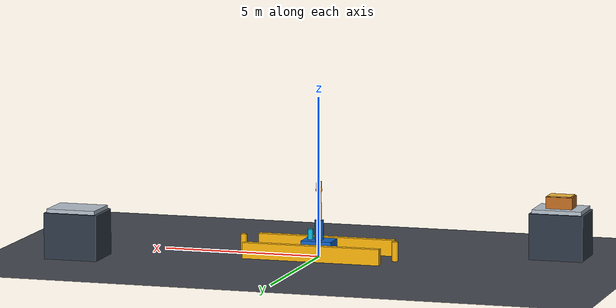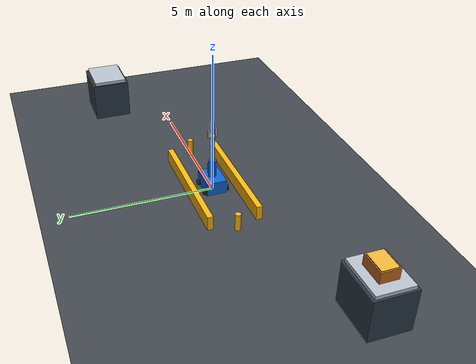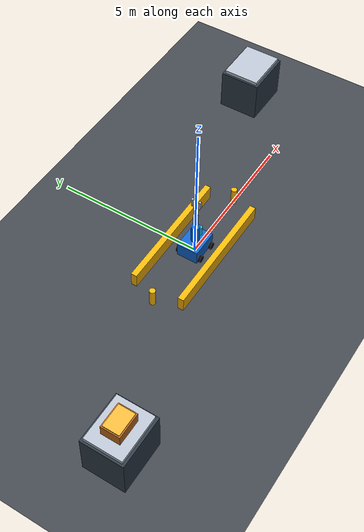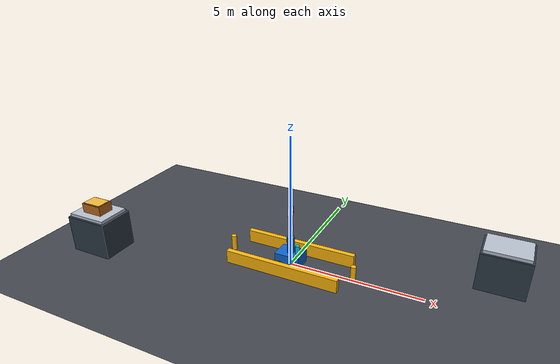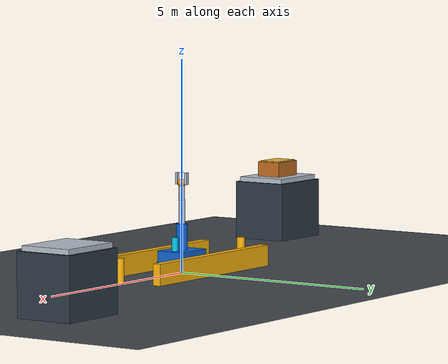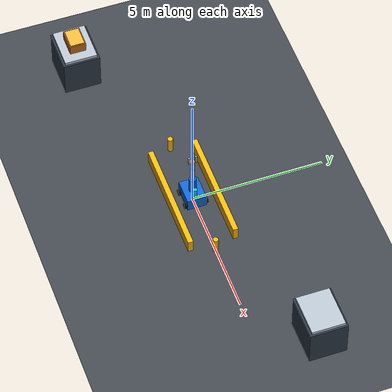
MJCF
<mujoco model="ad01_autonomous_tote_transfer_robot_v3">
  <compiler angle="degree" autolimits="true"/>
  <option timestep="0.005" gravity="0 0 -9.81" integrator="implicitfast"/>
  <statistic center="0 0 1" extent="13"/>
  <visual><global offwidth="960" offheight="540"/><headlight ambient="0.38 0.38 0.40" diffuse="0.84 0.84 0.84"/></visual>
  <default><joint damping="5" armature="0.05"/><geom friction="0.8 0.1 0.1" condim="3"/></default>
  <asset>
    <texture name="floor_tex" type="2d" builtin="checker" rgb1="0.22 0.24 0.27" rgb2="0.30 0.32 0.35" width="256" height="256"/>
    <material name="floor" texture="floor_tex" texrepeat="12 7"/>
    <material name="body" rgba="0.06 0.40 0.82 1"/>
    <material name="arm" rgba="0.72 0.76 0.81 1"/>
    <material name="accent" rgba="1.0 0.55 0.05 1"/>
    <material name="station" rgba="0.18 0.23 0.28 1"/>
    <material name="guard" rgba="1.0 0.72 0.04 1"/>
  </asset>
  <worldbody>
    <light pos="-2 -3 10" dir="0.1 0.1 -1"/>
    <geom type="plane" size="10 6 0.1" material="floor"/>
    <camera name="overview" pos="-10 -10 6.8" xyaxes="0.73 -0.68 0 0.37 0.40 0.84"/>
    <camera name="source" pos="-9 -7 4" xyaxes="0.58 -0.82 0 0.36 0.25 0.90"/>
    <camera name="destination" pos="10 -5 4.5" xyaxes="0.42 0.91 0 -0.38 0.18 0.91"/>

    <!-- Two customer workstations connected by an 18-meter measured route. -->
    <geom name="source_station" type="box" pos="-7.2 -2.1 0.72" size="0.85 0.70 0.72" material="station"/>
    <geom type="box" pos="-7.2 -2.1 1.50" size="0.78 0.62 0.06" material="arm"/>
    <geom name="destination_station" type="box" pos="7.2 2.1 0.72" size="0.85 0.70 0.72" material="station"/>
    <geom type="box" pos="7.2 2.1 1.50" size="0.78 0.62 0.06" material="arm"/>
    <geom type="box" pos="0 0.85 0.25" size="2.2 0.10 0.25" material="guard"/>
    <geom type="box" pos="0 -0.85 0.25" size="2.2 0.10 0.25" material="guard"/>
    <geom type="cylinder" pos="-2.45 0 0.30" size="0.10 0.30" material="guard"/>
    <geom type="cylinder" pos="2.45 0 0.30" size="0.10 0.30" material="guard"/>

    <body name="tote" mocap="true" pos="-7.2 -2.1 1.73">
      <geom type="box" size="0.42 0.31 0.20" rgba="0.76 0.43 0.13 1" contype="0" conaffinity="0"/>
      <geom type="box" pos="0 0 0.205" size="0.38 0.27 0.02" rgba="0.95 0.72 0.23 1" contype="0" conaffinity="0"/>
    </body>

    <body name="base" pos="0 0 0.30">
      <joint name="base_x" type="slide" axis="1 0 0" range="-7.5 7.5" damping="180"/>
      <joint name="base_y" type="slide" axis="0 1 0" range="-2.8 2.8" damping="180"/>
      <joint name="base_yaw" type="hinge" axis="0 0 1" range="-180 180" damping="160"/>
      <geom type="box" size="0.48 0.36 0.24" material="body" mass="34"/>
      <geom type="cylinder" pos="-0.32 -0.39 -0.14" quat="0.707 0.707 0 0" size="0.12 0.06" rgba="0.04 0.04 0.05 1"/>
      <geom type="cylinder" pos="0.32 -0.39 -0.14" quat="0.707 0.707 0 0" size="0.12 0.06" rgba="0.04 0.04 0.05 1"/>
      <geom type="cylinder" pos="-0.32 0.39 -0.14" quat="0.707 0.707 0 0" size="0.12 0.06" rgba="0.04 0.04 0.05 1"/>
      <geom type="cylinder" pos="0.32 0.39 -0.14" quat="0.707 0.707 0 0" size="0.12 0.06" rgba="0.04 0.04 0.05 1"/>
      <geom type="cylinder" pos="0.28 0 0.38" size="0.08 0.18" rgba="0.04 0.76 0.90 1"/>
      <body name="mast" pos="0 0 0.24">
        <geom type="cylinder" pos="0 0 0.31" size="0.14 0.31" material="body" mass="7"/>
        <body name="upper_arm" pos="0 0 0.62">
          <joint name="shoulder" type="hinge" axis="0 1 0" range="-85 105"/>
          <geom type="capsule" fromto="0 0 0 0 0 0.52" size="0.08" material="arm" mass="3"/>
          <body name="forearm" pos="0 0 0.52">
            <joint name="elbow" type="hinge" axis="0 1 0" range="-140 15"/>
            <geom type="capsule" fromto="0 0 0 0 0 0.43" size="0.07" material="arm" mass="2.2"/>
            <body name="wrist_body" pos="0 0 0.43">
              <joint name="wrist" type="hinge" axis="1 0 0" range="-90 90"/>
              <geom type="sphere" size="0.10" material="accent" mass="0.8"/>
              <geom type="box" pos="0 -0.13 0.11" size="0.04 0.03 0.14" material="arm" mass="0.2"/>
              <geom type="box" pos="0 0.13 0.11" size="0.04 0.03 0.14" material="arm" mass="0.2"/>
              <site name="tool_center" pos="0 0 0.25" size="0.035" rgba="0 1 0 1"/>
            </body>
          </body>
        </body>
      </body>
    </body>
  </worldbody>
  <actuator>
    <position name="base_x_position" joint="base_x" kp="380" ctrlrange="-7.5 7.5"/>
    <position name="base_y_position" joint="base_y" kp="380" ctrlrange="-2.8 2.8"/>
    <position name="base_yaw_position" joint="base_yaw" kp="160" ctrlrange="-180 180"/>
    <position name="shoulder_position" joint="shoulder" kp="180" ctrlrange="-85 105"/>
    <position name="elbow_position" joint="elbow" kp="150" ctrlrange="-140 15"/>
    <position name="wrist_position" joint="wrist" kp="70" ctrlrange="-90 90"/>
  </actuator>
</mujoco>
